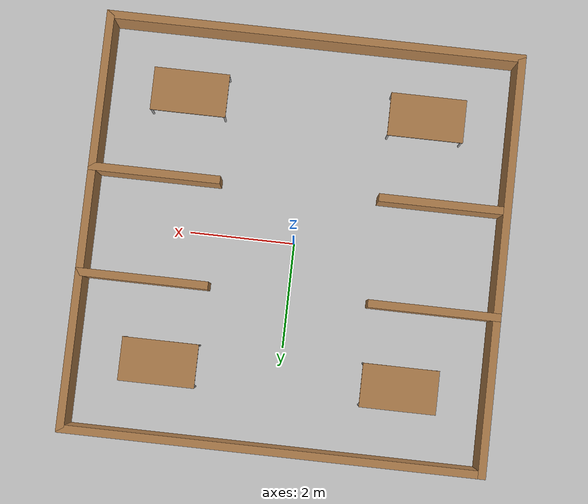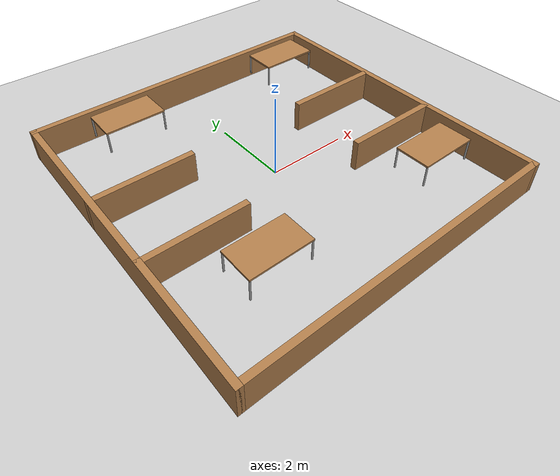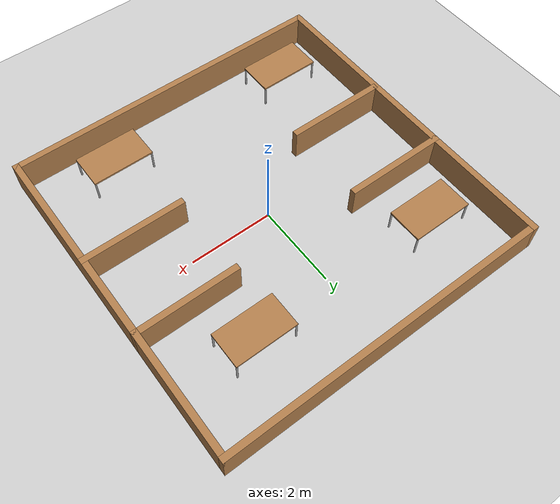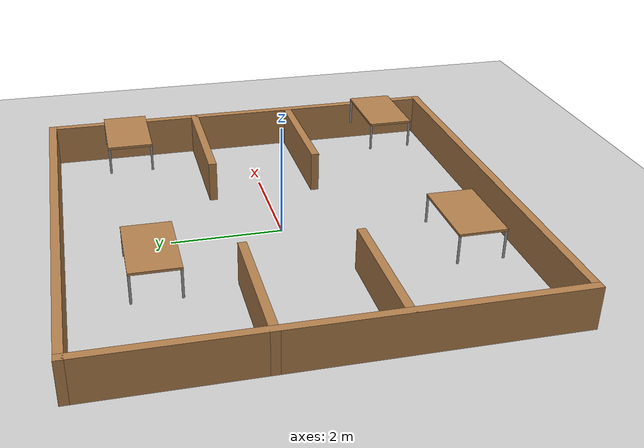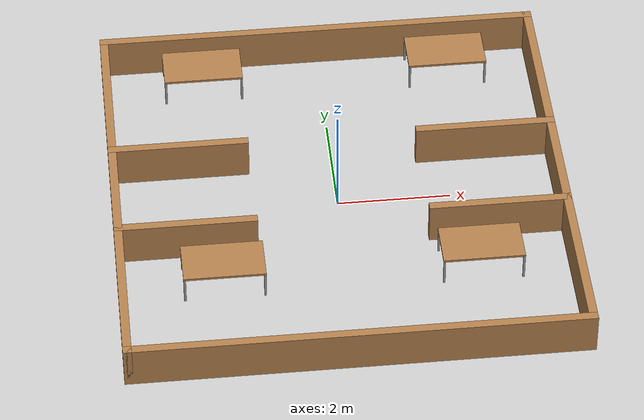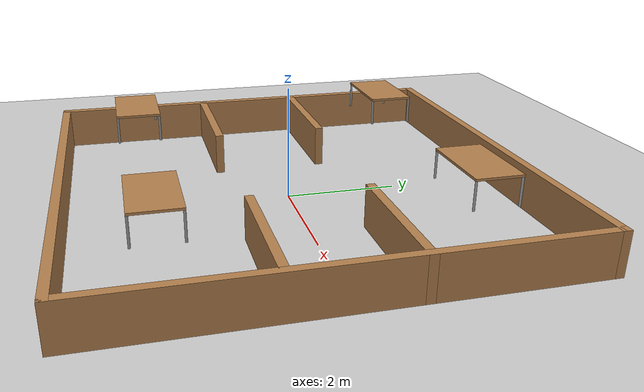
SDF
<sdf version='1.4'>
  <world name='default'>
    <!-- A global light source -->
    <include>
      <uri>model://sun</uri>
    </include>

    <!-- A ground plane -->
    <include>
      <uri>model://ground_plane</uri>
    </include>

    <physics type="ode">
      <real_time_update_rate>1000.0</real_time_update_rate>
      <max_step_size>0.001</max_step_size>
      <real_time_factor>1</real_time_factor>
      <ode>
        <solver>
          <type>quick</type>
          <iters>150</iters>
          <precon_iters>0</precon_iters>
          <sor>1.400000</sor>
          <use_dynamic_moi_rescaling>1</use_dynamic_moi_rescaling>
        </solver>
        <constraints>
          <cfm>0.00001</cfm>
          <erp>0.2</erp>
          <contact_max_correcting_vel>2000.000000</contact_max_correcting_vel>
          <contact_surface_layer>0.01000</contact_surface_layer>
        </constraints>
      </ode>
    </physics>

<model name='table'>
      <static>0</static>
      <link name='Table_1'>
        <collision name='surface_1'>
          <pose frame=''>0 0 0.75 0 -0 0</pose>
          <geometry>
            <box>
              <size>1.5 0.8 0.03</size>
            </box>
          </geometry>
          <surface>
            <friction>
              <ode>
                <mu>0.6</mu>
                <mu2>0.6</mu2>
              </ode>
            </friction>
          </surface>
        </collision>
        <visual name='visual_1'>
          <pose frame=''>0 0 0.75 0 -0 0</pose>
          <geometry>
            <box>
              <size>1.4 0.8 0.04</size>
            </box>
          </geometry>
          <material>
            <script>
              <uri>file://media/materials/scripts/gazebo.material</uri>
              <name>Gazebo/Wood</name>
            </script>
          </material>
        </visual>
        <collision name='front_left_leg_1'>
          <pose frame=''>0.68 0.38 0.5 0 -0 0</pose>
          <geometry>
            <cylinder>
              <radius>0.02</radius>
              <length>0.5</length>
            </cylinder>
          </geometry>
        </collision>
        <visual name='front_left_leg_1'>
          <pose frame=''>0.68 0.38 0.5 0 -0 0</pose>
          <geometry>
            <cylinder>
              <radius>0.02</radius>
              <length>0.5</length>
            </cylinder>
          </geometry>
          <material>
            <script>
              <uri>file://media/materials/scripts/gazebo.material</uri>
              <name>Gazebo/Grey</name>
            </script>
          </material>
        </visual>
        <collision name='front_right_leg_1'>
          <pose frame=''>0.68 -0.38 0.5 0 -0 0</pose>
          <geometry>
            <cylinder>
              <radius>0.02</radius>
              <length>0.5</length>
            </cylinder>
          </geometry>
        </collision>
        <visual name='front_right_leg_1'>
          <pose frame=''>0.68 -0.38 0.5 0 -0 0</pose>
          <geometry>
            <cylinder>
              <radius>0.02</radius>
              <length>0.5</length>
            </cylinder>
          </geometry>
          <material>
            <script>
              <uri>file://media/materials/scripts/gazebo.material</uri>
              <name>Gazebo/Grey</name>
            </script>
          </material>
        </visual>
        <collision name='back_right_leg_1'>
          <pose frame=''>-0.68 -0.38 0.5 0 -0 0</pose>
          <geometry>
            <cylinder>
              <radius>0.02</radius>
              <length>0.5</length>
            </cylinder>
          </geometry>
        </collision>
        <visual name='back_right_leg_1'>
          <pose frame=''>-0.68 -0.38 0.5 0 -0 0</pose>
          <geometry>
            <cylinder>
              <radius>0.02</radius>
              <length>0.5</length>
            </cylinder>
          </geometry>
          <material>
            <script>
              <uri>file://media/materials/scripts/gazebo.material</uri>
              <name>Gazebo/Grey</name>
            </script>
          </material>
        </visual>
        <collision name='back_left_leg_1'>
          <pose frame=''>-0.68 0.38 0.5 0 -0 0</pose>
          <geometry>
            <cylinder>
              <radius>0.02</radius>
              <length>0.5</length>
            </cylinder>
          </geometry>
        </collision>
        <visual name='back_left_leg_1'>
          <pose frame=''>-0.68 0.38 0.5 0 -0 0</pose>
          <geometry>
            <cylinder>
              <radius>0.02</radius>
              <length>0.5</length>
            </cylinder>
          </geometry>
          <material>
            <script>
              <uri>file://media/materials/scripts/gazebo.material</uri>
              <name>Gazebo/Grey</name>
            </script>
          </material>
        </visual>
	<pose frame=''>2.2 2.5 0.5 0 0 0</pose>
      </link>

<link name='Table_2'>
        <collision name='surface_2'>
          <pose frame=''>0 0 0.75 0 -0 0</pose>
          <geometry>
            <box>
              <size>1.5 0.8 0.03</size>
            </box>
          </geometry>
          <surface>
            <friction>
              <ode>
                <mu>0.6</mu>
                <mu2>0.6</mu2>
              </ode>
            </friction>
          </surface>
        </collision>
        <visual name='visual_2'>
          <pose frame=''>0 0 0.75 0 -0 0</pose>
          <geometry>
            <box>
              <size>1.4 0.8 0.04</size>
            </box>
          </geometry>
          <material>
            <script>
              <uri>file://media/materials/scripts/gazebo.material</uri>
              <name>Gazebo/Wood</name>
            </script>
          </material>
        </visual>
        <collision name='front_left_leg_2'>
          <pose frame=''>0.68 0.38 0.5 0 -0 0</pose>
          <geometry>
            <cylinder>
              <radius>0.02</radius>
              <length>0.5</length>
            </cylinder>
          </geometry>
        </collision>
        <visual name='front_left_leg_2'>
          <pose frame=''>0.68 0.38 0.5 0 -0 0</pose>
          <geometry>
            <cylinder>
              <radius>0.02</radius>
              <length>0.5</length>
            </cylinder>
          </geometry>
          <material>
            <script>
              <uri>file://media/materials/scripts/gazebo.material</uri>
              <name>Gazebo/Grey</name>
            </script>
          </material>
        </visual>
        <collision name='front_right_leg_2'>
          <pose frame=''>0.68 -0.38 0.5 0 -0 0</pose>
          <geometry>
            <cylinder>
              <radius>0.02</radius>
              <length>0.5</length>
            </cylinder>
          </geometry>
        </collision>
        <visual name='front_right_leg_2'>
          <pose frame=''>0.68 -0.38 0.5 0 -0 0</pose>
          <geometry>
            <cylinder>
              <radius>0.02</radius>
              <length>0.5</length>
            </cylinder>
          </geometry>
          <material>
            <script>
              <uri>file://media/materials/scripts/gazebo.material</uri>
              <name>Gazebo/Grey</name>
            </script>
          </material>
        </visual>
        <collision name='back_right_leg_2'>
          <pose frame=''>-0.68 -0.38 0.5 0 -0 0</pose>
          <geometry>
            <cylinder>
              <radius>0.02</radius>
              <length>0.5</length>
            </cylinder>
          </geometry>
        </collision>
        <visual name='back_right_leg_2'>
          <pose frame=''>-0.68 -0.38 0.5 0 -0 0</pose>
          <geometry>
            <cylinder>
              <radius>0.02</radius>
              <length>0.5</length>
            </cylinder>
          </geometry>
          <material>
            <script>
              <uri>file://media/materials/scripts/gazebo.material</uri>
              <name>Gazebo/Grey</name>
            </script>
          </material>
        </visual>
        <collision name='back_left_leg_2'>
          <pose frame=''>-0.68 0.38 0.5 0 -0 0</pose>
          <geometry>
            <cylinder>
              <radius>0.02</radius>
              <length>0.5</length>
            </cylinder>
          </geometry>
        </collision>
        <visual name='back_left_leg_2'>
          <pose frame=''>-0.68 0.38 0.5 0 -0 0</pose>
          <geometry>
            <cylinder>
              <radius>0.02</radius>
              <length>0.5</length>
            </cylinder>
          </geometry>
          <material>
            <script>
              <uri>file://media/materials/scripts/gazebo.material</uri>
              <name>Gazebo/Grey</name>
            </script>
          </material>
        </visual>
	<pose frame=''>-2.2 2.5 0.5 0 0 0</pose>
      </link>

<link name='Table_3'>
        <collision name='surface_3'>
          <pose frame=''>0 0 0.75 0 -0 0</pose>
          <geometry>
            <box>
              <size>1.5 0.8 0.03</size>
            </box>
          </geometry>
          <surface>
            <friction>
              <ode>
                <mu>0.6</mu>
                <mu2>0.6</mu2>
              </ode>
            </friction>
          </surface>
        </collision>
        <visual name='visual_3'>
          <pose frame=''>0 0 0.75 0 -0 0</pose>
          <geometry>
            <box>
              <size>1.4 0.8 0.04</size>
            </box>
          </geometry>
          <material>
            <script>
              <uri>file://media/materials/scripts/gazebo.material</uri>
              <name>Gazebo/Wood</name>
            </script>
          </material>
        </visual>
        <collision name='front_left_leg_3'>
          <pose frame=''>0.68 0.38 0.5 0 -0 0</pose>
          <geometry>
            <cylinder>
              <radius>0.02</radius>
              <length>0.5</length>
            </cylinder>
          </geometry>
        </collision>
        <visual name='front_left_leg_3'>
          <pose frame=''>0.68 0.38 0.5 0 -0 0</pose>
          <geometry>
            <cylinder>
              <radius>0.02</radius>
              <length>0.5</length>
            </cylinder>
          </geometry>
          <material>
            <script>
              <uri>file://media/materials/scripts/gazebo.material</uri>
              <name>Gazebo/Grey</name>
            </script>
          </material>
        </visual>
        <collision name='front_right_leg_3'>
          <pose frame=''>0.68 -0.38 0.5 0 -0 0</pose>
          <geometry>
            <cylinder>
              <radius>0.02</radius>
              <length>0.5</length>
            </cylinder>
          </geometry>
        </collision>
        <visual name='front_right_leg_3'>
          <pose frame=''>0.68 -0.38 0.5 0 -0 0</pose>
          <geometry>
            <cylinder>
              <radius>0.02</radius>
              <length>0.5</length>
            </cylinder>
          </geometry>
          <material>
            <script>
              <uri>file://media/materials/scripts/gazebo.material</uri>
              <name>Gazebo/Grey</name>
            </script>
          </material>
        </visual>
        <collision name='back_right_leg_3'>
          <pose frame=''>-0.68 -0.38 0.5 0 -0 0</pose>
          <geometry>
            <cylinder>
              <radius>0.02</radius>
              <length>0.5</length>
            </cylinder>
          </geometry>
        </collision>
        <visual name='back_right_leg_3'>
          <pose frame=''>-0.68 -0.38 0.5 0 -0 0</pose>
          <geometry>
            <cylinder>
              <radius>0.02</radius>
              <length>0.5</length>
            </cylinder>
          </geometry>
          <material>
            <script>
              <uri>file://media/materials/scripts/gazebo.material</uri>
              <name>Gazebo/Grey</name>
            </script>
          </material>
        </visual>
        <collision name='back_left_leg_3'>
          <pose frame=''>-0.68 0.38 0.5 0 -0 0</pose>
          <geometry>
            <cylinder>
              <radius>0.02</radius>
              <length>0.5</length>
            </cylinder>
          </geometry>
        </collision>
        <visual name='back_left_leg_3'>
          <pose frame=''>-0.68 0.38 0.5 0 -0 0</pose>
          <geometry>
            <cylinder>
              <radius>0.02</radius>
              <length>0.5</length>
            </cylinder>
          </geometry>
          <material>
            <script>
              <uri>file://media/materials/scripts/gazebo.material</uri>
              <name>Gazebo/Grey</name>
            </script>
          </material>
        </visual>
	<pose frame=''>2.2 -2.5 0.5 0 0 0</pose>
      </link>

<link name='Table_4'>
        <collision name='surface_4'>
          <pose frame=''>0 0 0.75 0 -0 0</pose>
          <geometry>
            <box>
              <size>1.5 0.8 0.03</size>
            </box>
          </geometry>
          <surface>
            <friction>
              <ode>
                <mu>0.6</mu>
                <mu2>0.6</mu2>
              </ode>
            </friction>
          </surface>
        </collision>
        <visual name='visual_4'>
          <pose frame=''>0 0 0.75 0 -0 0</pose>
          <geometry>
            <box>
              <size>1.4 0.8 0.04</size>
            </box>
          </geometry>
          <material>
            <script>
              <uri>file://media/materials/scripts/gazebo.material</uri>
              <name>Gazebo/Wood</name>
            </script>
          </material>
        </visual>
        <collision name='front_left_leg_4'>
          <pose frame=''>0.68 0.38 0.5 0 -0 0</pose>
          <geometry>
            <cylinder>
              <radius>0.02</radius>
              <length>0.5</length>
            </cylinder>
          </geometry>
        </collision>
        <visual name='front_left_leg_4'>
          <pose frame=''>0.68 0.38 0.5 0 -0 0</pose>
          <geometry>
            <cylinder>
              <radius>0.02</radius>
              <length>0.5</length>
            </cylinder>
          </geometry>
          <material>
            <script>
              <uri>file://media/materials/scripts/gazebo.material</uri>
              <name>Gazebo/Grey</name>
            </script>
          </material>
        </visual>
        <collision name='front_right_leg_4'>
          <pose frame=''>0.68 -0.38 0.5 0 -0 0</pose>
          <geometry>
            <cylinder>
              <radius>0.02</radius>
              <length>0.5</length>
            </cylinder>
          </geometry>
        </collision>
        <visual name='front_right_leg_4'>
          <pose frame=''>0.68 -0.38 0.5 0 -0 0</pose>
          <geometry>
            <cylinder>
              <radius>0.02</radius>
              <length>0.5</length>
            </cylinder>
          </geometry>
          <material>
            <script>
              <uri>file://media/materials/scripts/gazebo.material</uri>
              <name>Gazebo/Grey</name>
            </script>
          </material>
        </visual>
        <collision name='back_right_leg_4'>
          <pose frame=''>-0.68 -0.38 0.5 0 -0 0</pose>
          <geometry>
            <cylinder>
              <radius>0.02</radius>
              <length>0.5</length>
            </cylinder>
          </geometry>
        </collision>
        <visual name='back_right_leg_4'>
          <pose frame=''>-0.68 -0.38 0.5 0 -0 0</pose>
          <geometry>
            <cylinder>
              <radius>0.02</radius>
              <length>0.5</length>
            </cylinder>
          </geometry>
          <material>
            <script>
              <uri>file://media/materials/scripts/gazebo.material</uri>
              <name>Gazebo/Grey</name>
            </script>
          </material>
        </visual>
        <collision name='back_left_leg_4'>
          <pose frame=''>-0.68 0.38 0.5 0 -0 0</pose>
          <geometry>
            <cylinder>
              <radius>0.02</radius>
              <length>0.5</length>
            </cylinder>
          </geometry>
        </collision>
        <visual name='back_left_leg_4'>
          <pose frame=''>-0.68 0.38 0.5 0 -0 0</pose>
          <geometry>
            <cylinder>
              <radius>0.02</radius>
              <length>0.5</length>
            </cylinder>
          </geometry>
          <material>
            <script>
              <uri>file://media/materials/scripts/gazebo.material</uri>
              <name>Gazebo/Grey</name>
            </script>
          </material>
        </visual>
	<pose frame=''>-2.2 -2.5 0.5 0 0 0</pose>
      </link>

    </model>

<model name='turtlebot3_square'>
    <pose frame=''>0 0 0 0 -0 0</pose>
    <link name='Wall_0'>
      <collision name='Wall_0_Collision'>
        <geometry>
          <box>
            <size>8 0.15 1</size>
          </box>
        </geometry>
        <pose frame=''>0 0 0.25 0 -0 0</pose>
      </collision>
      <visual name='Wall_0_Visual'>
        <pose frame=''>0 0 0.25 0 -0 0</pose>
        <geometry>
          <box>
            <size>8 0.15 1</size>
          </box>
        </geometry>
        <material>
          <script>
            <uri>file://media/materials/scripts/gazebo.material</uri>
            <name>Gazebo/Wood</name>
          </script>
          <ambient>1 1 1 1</ambient>
        </material>
      </visual>
      <pose frame=''>0 3.925 0 0 -0 0</pose>
    </link>
    <link name='Wall_2'>
      <collision name='Wall_2_Collision'>
        <geometry>
          <box>
            <size>8 0.15 1</size>
          </box>
        </geometry>
        <pose frame=''>0 0 0.25 0 -0 0</pose>
      </collision>
      <visual name='Wall_2_Visual'>
        <pose frame=''>0 0 0.25 0 -0 0</pose>
        <geometry>
          <box>
            <size>8 0.15 1</size>
          </box>
        </geometry>
        <material>
          <script>
            <uri>file://media/materials/scripts/gazebo.material</uri>
            <name>Gazebo/Wood</name>
          </script>
          <ambient>1 1 1 1</ambient>
        </material>
      </visual>
      <pose frame=''>-3.925 0 0 0 0 -1.5708</pose>
    </link>
    <link name='Wall_3'>
      <collision name='Wall_3_Collision'>
        <geometry>
          <box>
            <size>8 0.15 1</size>
          </box>
        </geometry>
        <pose frame=''>0 0 0.25 0 -0 0</pose>
      </collision>
      <visual name='Wall_3_Visual'>
        <pose frame=''>0 0 0.25 0 -0 0</pose>
        <geometry>
          <box>
            <size>8 0.15 1</size>
          </box>
        </geometry>
        <material>
          <script>
            <uri>file://media/materials/scripts/gazebo.material</uri>
            <name>Gazebo/Wood</name>
          </script>
          <ambient>1 1 1 1</ambient>
        </material>
      </visual>
      <pose frame=''>0 -3.925 0 0 -0 0</pose>
    </link>
    <link name='Wall_4'>
      <collision name='Wall_4_Collision'>
        <geometry>
          <box>
            <size>8 0.15 1</size>
          </box>
        </geometry>
        <pose frame=''>0 0 0.25 0 -0 0</pose>
      </collision>
      <visual name='Wall_4_Visual'>
        <pose frame=''>0 0 0.25 0 -0 0</pose>
        <geometry>
          <box>
            <size>8 0.15 1</size>
          </box>
        </geometry>
        <material>
          <script>
            <uri>file://media/materials/scripts/gazebo.material</uri>
            <name>Gazebo/Wood</name>
          </script>
          <ambient>1 1 1 1</ambient>
        </material>
      </visual>
      <pose frame=''>3.925 0 0 0 -0 1.5708</pose>
    </link>

    <link name='Wall_5'>
      <collision name='Wall_5_Collision'>
        <geometry>
          <box>
            <size>2.5 0.15 1</size>
          </box>
        </geometry>
        <pose frame=''>0 0 0.25 0 -0 0</pose>
      </collision>
      <visual name='Wall_5_Visual'>
        <pose frame=''>0 0 0.25 0 -0 0</pose>
        <geometry>
          <box>
            <size>2.5 0.15 1</size>
          </box>
        </geometry>
        <material>
          <script>
            <uri>file://media/materials/scripts/gazebo.material</uri>
            <name>Gazebo/Wood</name>
          </script>
          <ambient>1 1 1 1</ambient>
        </material>
      </visual>
      <pose frame=''>-2.75 1 0 0 0 0</pose>
    </link>

    <link name='Wall_6'>
      <collision name='Wall_6_Collision'>
        <geometry>
          <box>
            <size>2.5 0.15 1</size>
          </box>
        </geometry>
        <pose frame=''>0 0 0.25 0 -0 0</pose>
      </collision>
      <visual name='Wall_6_Visual'>
        <pose frame=''>0 0 0.25 0 -0 0</pose>
        <geometry>
          <box>
            <size>2.5 0.15 1</size>
          </box>
        </geometry>
        <material>
          <script>
            <uri>file://media/materials/scripts/gazebo.material</uri>
            <name>Gazebo/Wood</name>
          </script>
          <ambient>1 1 1 1</ambient>
        </material>
      </visual>
      <pose frame=''>-2.75 -1 0 0 0 0</pose>
    </link>

<link name='Wall_7'>
      <collision name='Wall_7_Collision'>
        <geometry>
          <box>
            <size>2.5 0.15 1</size>
          </box>
        </geometry>
        <pose frame=''>0 0 0.25 0 -0 0</pose>
      </collision>
      <visual name='Wall_7_Visual'>
        <pose frame=''>0 0 0.25 0 -0 0</pose>
        <geometry>
          <box>
            <size>2.5 0.15 1</size>
          </box>
        </geometry>
        <material>
          <script>
            <uri>file://media/materials/scripts/gazebo.material</uri>
            <name>Gazebo/Wood</name>
          </script>
          <ambient>1 1 1 1</ambient>
        </material>
      </visual>
      <pose frame=''>2.75 1 0 0 0 0</pose>
    </link>

    <link name='Wall_8'>
      <collision name='Wall_8_Collision'>
        <geometry>
          <box>
            <size>2.5 0.15 1</size>
          </box>
        </geometry>
        <pose frame=''>0 0 0.25 0 -0 0</pose>
      </collision>
      <visual name='Wall_8_Visual'>
        <pose frame=''>0 0 0.25 0 -0 0</pose>
        <geometry>
          <box>
            <size>2.5 0.15 1</size>
          </box>
        </geometry>
        <material>
          <script>
            <uri>file://media/materials/scripts/gazebo.material</uri>
            <name>Gazebo/Wood</name>
          </script>
          <ambient>1 1 1 1</ambient>
        </material>
      </visual>
      <pose frame=''>2.75 -1 0 0 0 0</pose>
    </link>
    <static>1</static>
      </model>

    <scene>
      <ambient>0.4 0.4 0.4 1</ambient>
      <background>0.7 0.7 0.7 1</background>
      <shadows>true</shadows>
    </scene>

    <gui fullscreen='0'>
      <camera name='user_camera'>
        <pose>0.0 0.0 17.0 0 1.5708 0</pose>
        <view_controller>orbit</view_controller>
      </camera>
    </gui>
  </world>
</sdf>
